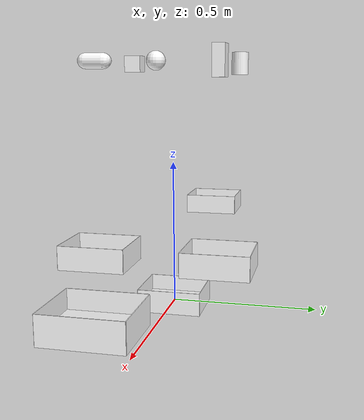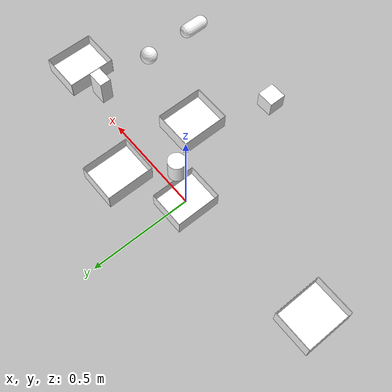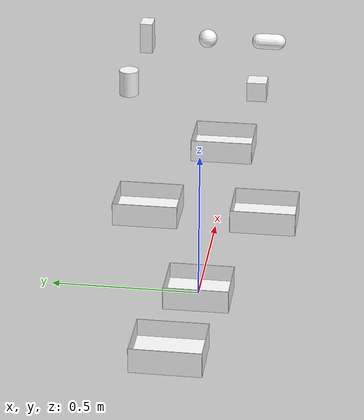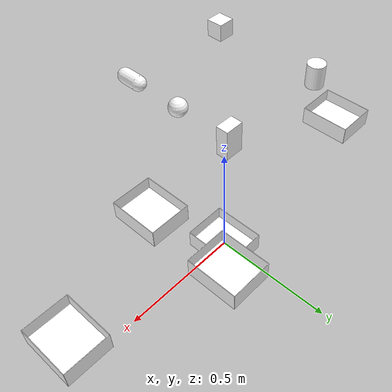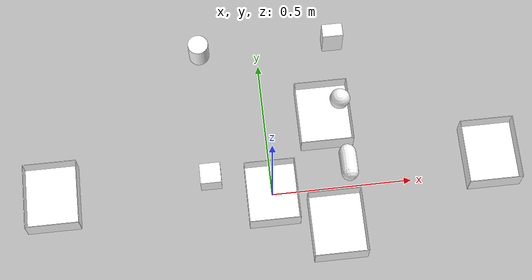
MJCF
<mujoco>
      <compiler texturedir="textures" />

      <asset>
            <texture name="cube_tex" type="2d" file="cube.png" />
            <texture name="cylinder_tex" type="2d" file="cylinder.png" />
            <texture name="sphere_tex" type="2d" file="sphere.png" />
            <texture name="capsule_tex" type="2d" file="capsule.png" />
            <texture name="rectangle_tex" type="2d" file="rectangle.png" />
            <material name="cube_mat" texture="cube_tex" rgba="1 1 1 1" />
            <material name="cylinder_mat" texture="cylinder_tex" rgba="1 1 1 1" />
            <material name="sphere_mat" texture="sphere_tex" rgba="1 1 1 1" />
            <material name="capsule_mat" texture="capsule_tex" rgba="1 1 1 1" />
            <material name="rectangle_mat" texture="rectangle_tex" rgba="1 1 1 1" />
      </asset>

      <worldbody>

            <!-- Cube Target (textured like the cube object) -->
            <body name="cube_target" pos="-0.75 0 0.2" quat="1 0 0 0">
                  <freejoint name="cube_target_joint" />
                  <!-- invisible ballast/anchor geom -->
                  <geom type="box" size="0.01 0.01 0.01" mass="0.01" rgba="0 0 0 0" contype="1"
                        conaffinity="15" />
                  <!-- invisible marker -->
                  <geom name="cube_target_geom" type="box" size="0.03 0.03 0.005" rgba="0 0 0 0"
                        contype="0" conaffinity="0" />

                  <!-- floor + walls share cube material -->
                  <geom name="cube_target_floor" type="box" size="0.09 0.11 0.002" pos="0 0 0.002"
                        material="cube_mat" contype="1" conaffinity="1" rgba="1 1 1 1" />
                  <geom name="cube_target_wall_north" type="box" size="0.09 0.001 0.04"
                        pos="0 0.11 0.02"
                        material="cube_mat" contype="1" conaffinity="1" rgba="1 1 1 1" />
                  <geom name="cube_target_wall_south" type="box" size="0.09 0.001 0.04"
                        pos="0 -0.11 0.02"
                        material="cube_mat" contype="1" conaffinity="1" rgba="1 1 1 1" />
                  <geom name="cube_target_wall_east" type="box" size="0.001 0.11 0.04"
                        pos="0.09 0 0.02"
                        material="cube_mat" contype="1" conaffinity="1" rgba="1 1 1 1" />
                  <geom name="cube_target_wall_west" type="box" size="0.001 0.11 0.04"
                        pos="-0.09 0 0.02"
                        material="cube_mat" contype="1" conaffinity="1" rgba="1 1 1 1" />
            </body>

            <!-- Cylinder Target -->
            <body name="cylinder_target" pos="0 0 0" quat="1 0 0 0">
                  <freejoint name="cylinder_target_joint" />
                  <geom type="box" size="0.01 0.01 0.01" mass="0.01" rgba="0 0 0 0" contype="1"
                        conaffinity="15" />
                  <geom name="cylinder_target_geom" type="box" size="0.03 0.03 0.005" rgba="0 0 0 0"
                        contype="0" conaffinity="0" />

                  <geom name="cylinder_target_floor" type="box" size="0.09 0.11 0.002"
                        pos="0 0 0.002"
                        material="cylinder_mat" contype="1" conaffinity="1" rgba="1 1 1 1" />
                  <geom name="cylinder_target_wall_north" type="box" size="0.09 0.001 0.04"
                        pos="0 0.11 0.02"
                        material="cylinder_mat" contype="1" conaffinity="1" rgba="1 1 1 1" />
                  <geom name="cylinder_target_wall_south" type="box" size="0.09 0.001 0.04"
                        pos="0 -0.11 0.02"
                        material="cylinder_mat" contype="1" conaffinity="1" rgba="1 1 1 1" />
                  <geom name="cylinder_target_wall_east" type="box" size="0.001 0.11 0.04"
                        pos="0.09 0 0.02"
                        material="cylinder_mat" contype="1" conaffinity="1" rgba="1 1 1 1" />
                  <geom name="cylinder_target_wall_west" type="box" size="0.001 0.11 0.04"
                        pos="-0.09 0 0.02"
                        material="cylinder_mat" contype="1" conaffinity="1" rgba="1 1 1 1" />
            </body>

            <!-- Sphere Target -->
            <body name="sphere_target" pos="0.75 0 0.2">
                  <freejoint name="sphere_target_joint" />
                  <geom type="box" size="0.01 0.01 0.01" mass="0.01" rgba="0 0 0 0" contype="1"
                        conaffinity="15" />
                  <geom name="sphere_target_geom" type="box" size="0.03 0.03 0.005" rgba="0 0 0 0"
                        contype="0" conaffinity="0" />

                  <geom name="sphere_target_floor" type="box" size="0.09 0.11 0.002" pos="0 0 0.002"
                        material="sphere_mat" contype="1" conaffinity="1" rgba="1 1 1 1" />
                  <geom name="sphere_target_wall_north" type="box" size="0.09 0.001 0.04"
                        pos="0 0.11 0.02"
                        material="sphere_mat" contype="1" conaffinity="1" rgba="1 1 1 1" />
                  <geom name="sphere_target_wall_south" type="box" size="0.09 0.001 0.04"
                        pos="0 -0.11 0.02"
                        material="sphere_mat" contype="1" conaffinity="1" rgba="1 1 1 1" />
                  <geom name="sphere_target_wall_east" type="box" size="0.001 0.11 0.04"
                        pos="0.09 0 0.02"
                        material="sphere_mat" contype="1" conaffinity="1" rgba="1 1 1 1" />
                  <geom name="sphere_target_wall_west" type="box" size="0.001 0.11 0.04"
                        pos="-0.09 0 0.02"
                        material="sphere_mat" contype="1" conaffinity="1" rgba="1 1 1 1" />
            </body>

            <!-- Capsule Target -->
            <body name="capsule_target" pos="0.2 -0.2 0.2" quat="1 0 0 0">
                  <freejoint name="capsule_target_joint" />
                  <geom type="box" size="0.01 0.01 0.01" mass="0.01" rgba="0 0 0 0" contype="1"
                        conaffinity="15" />
                  <geom name="capsule_target_geom" type="box" size="0.03 0.03 0.005" rgba="0 0 0 0"
                        contype="0" conaffinity="0" />

                  <geom name="capsule_target_floor" type="box" size="0.09 0.11 0.002"
                        pos="0 0 0.002"
                        material="capsule_mat" contype="1" conaffinity="1" rgba="1 1 1 1" />
                  <geom name="capsule_target_wall_north" type="box" size="0.09 0.001 0.04"
                        pos="0 0.11 0.02"
                        material="capsule_mat" contype="1" conaffinity="1" rgba="1 1 1 1" />
                  <geom name="capsule_target_wall_south" type="box" size="0.09 0.001 0.04"
                        pos="0 -0.11 0.02"
                        material="capsule_mat" contype="1" conaffinity="1" rgba="1 1 1 1" />
                  <geom name="capsule_target_wall_east" type="box" size="0.001 0.11 0.04"
                        pos="0.09 0 0.02"
                        material="capsule_mat" contype="1" conaffinity="1" rgba="1 1 1 1" />
                  <geom name="capsule_target_wall_west" type="box" size="0.001 0.11 0.04"
                        pos="-0.09 0 0.02"
                        material="capsule_mat" contype="1" conaffinity="1" rgba="1 1 1 1" />
            </body>

            <!-- Rectangle Target -->
            <body name="rectangle_target" pos="0.2 0.2 0.2" quat="1 0 0 0">
                  <freejoint name="rectangle_target_joint" />
                  <geom type="box" size="0.01 0.01 0.01" mass="0.01" rgba="0 0 0 0" contype="1"
                        conaffinity="15" />
                  <geom name="rectangle_target_geom" type="box" size="0.03 0.05 0.005"
                        rgba="0 0 0 0" contype="0" conaffinity="0" />

                  <geom name="rectangle_target_floor" type="box" size="0.09 0.11 0.002"
                        pos="0 0 0.002"
                        material="rectangle_mat" contype="1" conaffinity="1" rgba="1 1 1 1" />
                  <geom name="rectangle_target_wall_north" type="box" size="0.09 0.001 0.04"
                        pos="0 0.11 0.02"
                        material="rectangle_mat" contype="1" conaffinity="1" rgba="1 1 1 1" />
                  <geom name="rectangle_target_wall_south" type="box" size="0.09 0.001 0.04"
                        pos="0 -0.11 0.02"
                        material="rectangle_mat" contype="1" conaffinity="1" rgba="1 1 1 1" />
                  <geom name="rectangle_target_wall_east" type="box" size="0.001 0.11 0.04"
                        pos="0.09 0 0.02"
                        material="rectangle_mat" contype="1" conaffinity="1" rgba="1 1 1 1" />
                  <geom name="rectangle_target_wall_west" type="box" size="0.001 0.11 0.04"
                        pos="-0.09 0 0.02"
                        material="rectangle_mat" contype="1" conaffinity="1" rgba="1 1 1 1" />
            </body>

            <!-- Objects -->
            <body name="cube_obj" pos="-0.2 -0.2 0.84" quat="1 0 0 0">
                  <freejoint name="object0:joint" />
                  <geom name="object0_geom" type="box" size="0.03 0.03 0.03"
                        material="cube_mat" rgba="1 1 1 1" mass="0.05"
                        solimp="0.999 0.999 0.001" solref="0.001 1" friction="0.95 0.3 0.1"
                        condim="4"
                        conaffinity="9" contype="9" />
                  <site name="object0" pos="0 0 0" size="0.02 0.02 0.02" rgba="0 0 0 0"
                        type="sphere" />
            </body>

            <body name="cylinder_obj" pos="-0.2 0.2 0.84" quat="1 0 0 0">
                  <freejoint name="object1:joint" />
                  <geom name="object1_geom" type="cylinder" size="0.03 0.04"
                        material="cylinder_mat" rgba="1 1 1 1" mass="0.05"
                        solimp="0.999 0.999 0.001" solref="0.001 1" friction="0.95 0.3 0.1"
                        condim="4"
                        conaffinity="9" contype="9" />
                  <site name="object1" pos="0 0 0" size="0.02 0.02 0.02" rgba="0 0 0 0"
                        type="sphere" />
            </body>

            <body name="sphere_obj" pos="0.2 0 0.84" quat="1 0 0 0">
                  <freejoint name="object2:joint" />
                  <geom name="object2_geom" type="sphere" size="0.03"
                        material="sphere_mat" rgba="1 1 1 1" mass="0.05"
                        solimp="0.999 0.999 0.001" solref="0.001 1" friction="0.95 0.3 0.1"
                        condim="4"
                        conaffinity="9" contype="9" />
                  <site name="object2" pos="0 0 0" size="0.02 0.02 0.02" rgba="0 0 0 0"
                        type="sphere" />
            </body>

            <body name="capsule_obj" pos="0.2 -0.2 0.84" quat="0.707 0.707 0 0">
                  <freejoint name="object3:joint" />
                  <geom name="object3_geom" type="capsule" size="0.025 0.03"
                        material="capsule_mat" rgba="1 1 1 1" mass="0.05"
                        solimp="0.999 0.999 0.001" solref="0.001 1" friction="0.95 0.3 0.1"
                        condim="4"
                        conaffinity="9" contype="9" />
                  <site name="object3" pos="0 0 0" size="0.02 0.02 0.02" rgba="0 0 0 0"
                        type="sphere" />
            </body>

            <body name="rectangle_obj" pos="0.2 0.2 0.84" quat="0.707 0.707 0 0">
                  <freejoint name="object4:joint" />
                  <geom name="object4_geom" type="box" size="0.03 0.05 0.02"
                        material="rectangle_mat" rgba="1 1 1 1" mass="0.05"
                        solimp="0.999 0.999 0.001" solref="0.001 1" friction="0.95 0.3 0.1"
                        condim="4"
                        conaffinity="9" contype="9" />
                  <site name="object4" pos="0 0 0" size="0.02 0.02 0.02" rgba="0 0 0 0"
                        type="sphere" />
            </body>

      </worldbody>

</mujoco>
